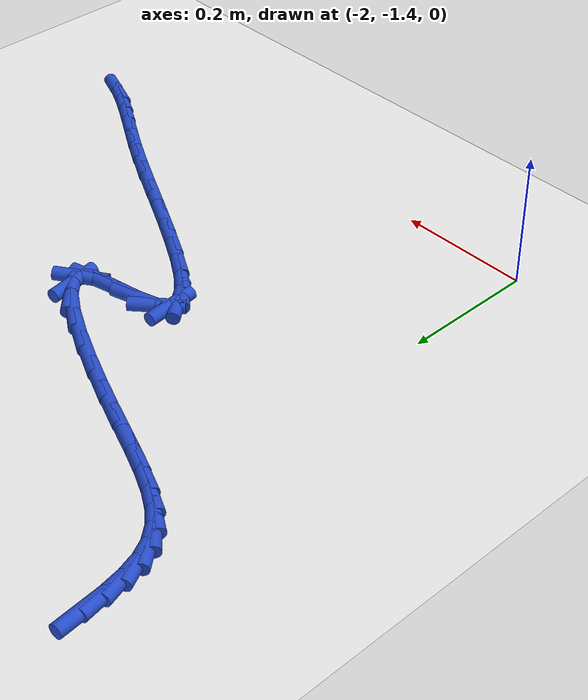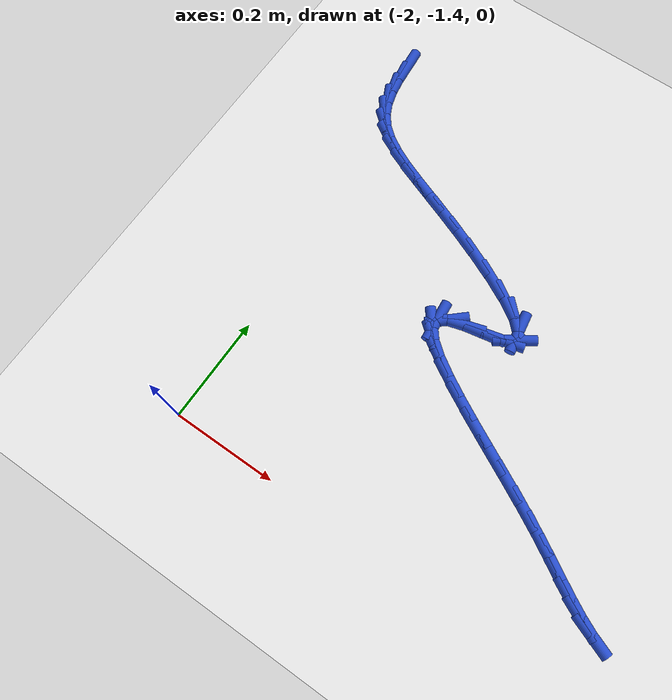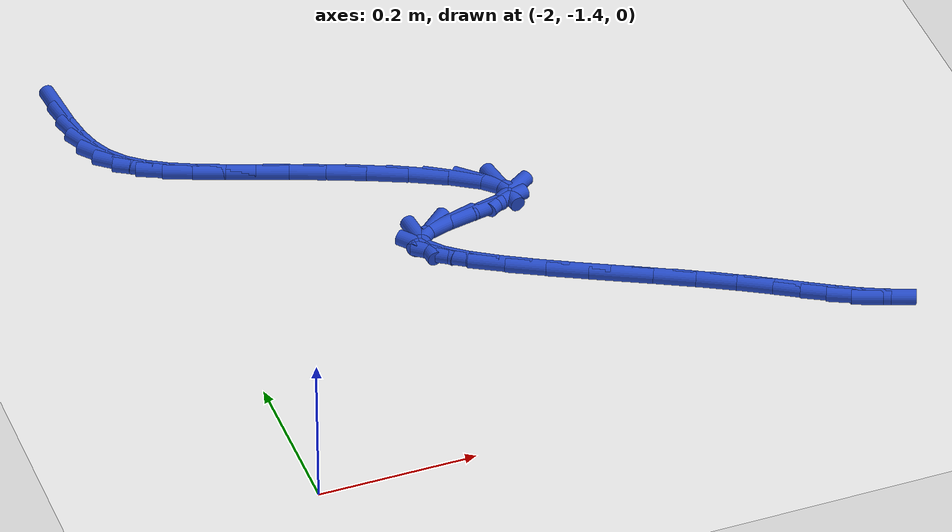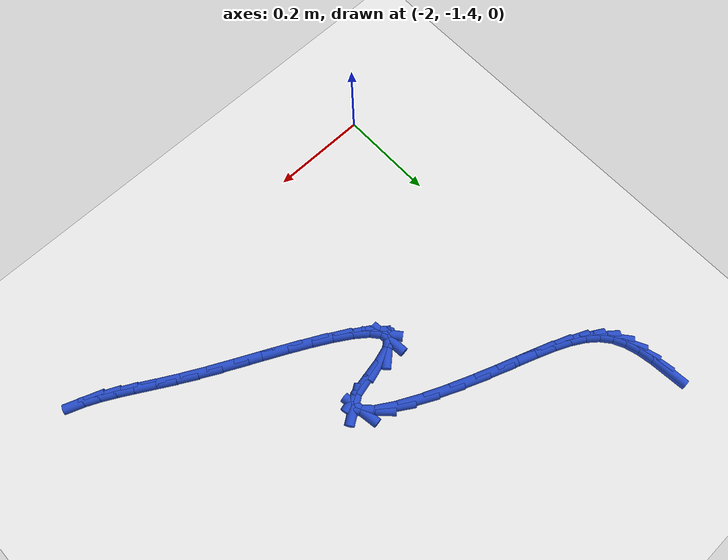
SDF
<sdf version="1.6">
 <world name="default">
  <model name="ground_plane">
   <static>1</static>
   <link name="link">
    <collision name="collision">
     <geometry><plane><normal>0 0 1</normal><size>100 100</size></plane></geometry>
     <surface><friction><ode><mu>100</mu><mu2>50</mu2></ode></friction></surface>
    </collision>
    <visual name="visual">
     <cast_shadows>0</cast_shadows>
     <geometry><plane><normal>0 0 1</normal><size>100 100</size></plane></geometry>
     <material>
      <script><uri>file://media/materials/scripts/gazebo.material</uri><name>Gazebo/WhiteGlow</name></script>
     </material>
    </visual>
   </link>
  </model>
  <model name="line">
   <link name="link_135">
    <pose>-2.067916493890919 -0.598722598378072 0.01 0 1.57 -1.483299380182615</pose>
    <collision name="collision">
     <geometry><cylinder><radius>0.01</radius><length>0.08</length></cylinder></geometry>
    </collision>
    <visual name="visual">
     <material>
      <script><name>Gazebo/Blue</name><uri>file://media/materials/scripts/gazebo.material</uri></script>
     </material>
     <geometry><cylinder><radius>0.01</radius><length>0.08</length></cylinder></geometry>
    </visual>
   </link>
   <link name="link_136">
    <pose>-2.065037530786771 -0.6315421723395312 0.01 0 1.57 -1.4065936698036143</pose>
    <collision name="collision">
     <geometry><cylinder><radius>0.01</radius><length>0.08</length></cylinder></geometry>
    </collision>
    <visual name="visual">
     <material>
      <script><name>Gazebo/Blue</name><uri>file://media/materials/scripts/gazebo.material</uri></script>
     </material>
     <geometry><cylinder><radius>0.01</radius><length>0.08</length></cylinder></geometry>
    </visual>
   </link>
   <link name="link_137">
    <pose>-2.0600673103200773 -0.6615384597249064 0.01 0 1.57 -1.283832201595204</pose>
    <collision name="collision">
     <geometry><cylinder><radius>0.01</radius><length>0.08</length></cylinder></geometry>
    </collision>
    <visual name="visual">
     <material>
      <script><name>Gazebo/Blue</name><uri>file://media/materials/scripts/gazebo.material</uri></script>
     </material>
     <geometry><cylinder><radius>0.01</radius><length>0.08</length></cylinder></geometry>
    </visual>
   </link>
   <link name="link_138">
    <pose>-2.052122997119653 -0.6884583382209716 0.01 0 1.57 -1.1069429714617924</pose>
    <collision name="collision">
     <geometry><cylinder><radius>0.01</radius><length>0.08</length></cylinder></geometry>
    </collision>
    <visual name="visual">
     <material>
      <script><name>Gazebo/Blue</name><uri>file://media/materials/scripts/gazebo.material</uri></script>
     </material>
     <geometry><cylinder><radius>0.01</radius><length>0.08</length></cylinder></geometry>
    </visual>
   </link>
   <link name="link_139">
    <pose>-2.0403217558143116 -0.7120486855145011 0.01 0 1.57 -0.8862366457816258</pose>
    <collision name="collision">
     <geometry><cylinder><radius>0.01</radius><length>0.08</length></cylinder></geometry>
    </collision>
    <visual name="visual">
     <material>
      <script><name>Gazebo/Blue</name><uri>file://media/materials/scripts/gazebo.material</uri></script>
     </material>
     <geometry><cylinder><radius>0.01</radius><length>0.08</length></cylinder></geometry>
    </visual>
   </link>
   <link name="link_140">
    <pose>-2.0238890570081325 -0.7321811038231639 0.01 0 1.57 -0.683920303082574</pose>
    <collision name="collision">
     <geometry><cylinder><radius>0.01</radius><length>0.08</length></cylinder></geometry>
    </collision>
    <visual name="visual">
     <material>
      <script><name>Gazebo/Blue</name><uri>file://media/materials/scripts/gazebo.material</uri></script>
     </material>
     <geometry><cylinder><radius>0.01</radius><length>0.08</length></cylinder></geometry>
    </visual>
   </link>
   <link name="link_141">
    <pose>-2.0026890162471576 -0.7494626551635923 0.01 0 1.57 -0.5342690049936617</pose>
    <collision name="collision">
     <geometry><cylinder><radius>0.01</radius><length>0.08</length></cylinder></geometry>
    </collision>
    <visual name="visual">
     <material>
      <script><name>Gazebo/Blue</name><uri>file://media/materials/scripts/gazebo.material</uri></script>
     </material>
     <geometry><cylinder><radius>0.01</radius><length>0.08</length></cylinder></geometry>
    </visual>
   </link>
   <link name="link_142">
    <pose>-1.9768190296153685 -0.7647690460624794 0.01 0 1.57 -0.43665350294838584</pose>
    <collision name="collision">
     <geometry><cylinder><radius>0.01</radius><length>0.08</length></cylinder></geometry>
    </collision>
    <visual name="visual">
     <material>
      <script><name>Gazebo/Blue</name><uri>file://media/materials/scripts/gazebo.material</uri></script>
     </material>
     <geometry><cylinder><radius>0.01</radius><length>0.08</length></cylinder></geometry>
    </visual>
   </link>
   <link name="link_143">
    <pose>-1.946376837153299 -0.7789763791448823 0.01 0 1.57 -0.38094366198259</pose>
    <collision name="collision">
     <geometry><cylinder><radius>0.01</radius><length>0.08</length></cylinder></geometry>
    </collision>
    <visual name="visual">
     <material>
      <script><name>Gazebo/Blue</name><uri>file://media/materials/scripts/gazebo.material</uri></script>
     </material>
     <geometry><cylinder><radius>0.01</radius><length>0.08</length></cylinder></geometry>
    </visual>
   </link>
   <link name="link_144">
    <pose>-1.911460178901483 -0.7929607570358587 0.01 0 1.57 -0.35659362304120257</pose>
    <collision name="collision">
     <geometry><cylinder><radius>0.01</radius><length>0.08</length></cylinder></geometry>
    </collision>
    <visual name="visual">
     <material>
      <script><name>Gazebo/Blue</name><uri>file://media/materials/scripts/gazebo.material</uri></script>
     </material>
     <geometry><cylinder><radius>0.01</radius><length>0.08</length></cylinder></geometry>
    </visual>
   </link>
   <link name="link_145">
    <pose>-1.8721667949004552 -0.8075982823604648 0.01 0 1.57 -0.3552879892847567</pose>
    <collision name="collision">
     <geometry><cylinder><radius>0.01</radius><length>0.08</length></cylinder></geometry>
    </collision>
    <visual name="visual">
     <material>
      <script><name>Gazebo/Blue</name><uri>file://media/materials/scripts/gazebo.material</uri></script>
     </material>
     <geometry><cylinder><radius>0.01</radius><length>0.08</length></cylinder></geometry>
    </visual>
   </link>
   <link name="link_146">
    <pose>-1.8285944251907496 -0.823765057743758 0.01 0 1.57 -0.37014328366667143</pose>
    <collision name="collision">
     <geometry><cylinder><radius>0.01</radius><length>0.08</length></cylinder></geometry>
    </collision>
    <visual name="visual">
     <material>
      <script><name>Gazebo/Blue</name><uri>file://media/materials/scripts/gazebo.material</uri></script>
     </material>
     <geometry><cylinder><radius>0.01</radius><length>0.08</length></cylinder></geometry>
    </visual>
   </link>
   <link name="link_147">
    <pose>-1.7811414905759337 -0.8421781255200526 0.01 0 1.57 -0.3932155862837983</pose>
    <collision name="collision">
     <geometry><cylinder><radius>0.01</radius><length>0.08</length></cylinder></geometry>
    </collision>
    <visual name="visual">
     <material>
      <script><name>Gazebo/Blue</name><uri>file://media/materials/scripts/gazebo.material</uri></script>
     </material>
     <geometry><cylinder><radius>0.01</radius><length>0.08</length></cylinder></geometry>
    </visual>
   </link>
   <link name="link_148">
    <pose>-1.7323746527942985 -0.862407527364242 0.01 0 1.57 -0.42569543152766987</pose>
    <collision name="collision">
     <geometry><cylinder><radius>0.01</radius><length>0.08</length></cylinder></geometry>
    </collision>
    <visual name="visual">
     <material>
      <script><name>Gazebo/Blue</name><uri>file://media/materials/scripts/gazebo.material</uri></script>
     </material>
     <geometry><cylinder><radius>0.01</radius><length>0.08</length></cylinder></geometry>
    </visual>
   </link>
   <link name="link_149">
    <pose>-1.685811658556468 -0.883520180472307 0.01 0 1.57 -0.47614512502738</pose>
    <collision name="collision">
     <geometry><cylinder><radius>0.01</radius><length>0.08</length></cylinder></geometry>
    </collision>
    <visual name="visual">
     <material>
      <script><name>Gazebo/Blue</name><uri>file://media/materials/scripts/gazebo.material</uri></script>
     </material>
     <geometry><cylinder><radius>0.01</radius><length>0.08</length></cylinder></geometry>
    </visual>
   </link>
   <link name="link_150">
    <pose>-1.6449743141230697 -0.9045808545360223 0.01 0 1.57 -0.56607121605011</pose>
    <collision name="collision">
     <geometry><cylinder><radius>0.01</radius><length>0.08</length></cylinder></geometry>
    </collision>
    <visual name="visual">
     <material>
      <script><name>Gazebo/Blue</name><uri>file://media/materials/scripts/gazebo.material</uri></script>
     </material>
     <geometry><cylinder><radius>0.01</radius><length>0.08</length></cylinder></geometry>
    </visual>
   </link>
   <link name="link_151">
    <pose>-1.6133844257547305 -0.9246543192471623 0.01 0 1.57 -0.7672889425826049</pose>
    <collision name="collision">
     <geometry><cylinder><radius>0.01</radius><length>0.08</length></cylinder></geometry>
    </collision>
    <visual name="visual">
     <material>
      <script><name>Gazebo/Blue</name><uri>file://media/materials/scripts/gazebo.material</uri></script>
     </material>
     <geometry><cylinder><radius>0.01</radius><length>0.08</length></cylinder></geometry>
    </visual>
   </link>
   <link name="link_152">
    <pose>-1.5945637997120776 -0.9428053442975004 0.01 0 1.57 -1.4068780096377695</pose>
    <collision name="collision">
     <geometry><cylinder><radius>0.01</radius><length>0.08</length></cylinder></geometry>
    </collision>
    <visual name="visual">
     <material>
      <script><name>Gazebo/Blue</name><uri>file://media/materials/scripts/gazebo.material</uri></script>
     </material>
     <geometry><cylinder><radius>0.01</radius><length>0.08</length></cylinder></geometry>
    </visual>
   </link>
   <link name="link_153">
    <pose>-1.5920342422557385 -0.9580986993788119 0.01 0 1.57 0.5915170766271064</pose>
    <collision name="collision">
     <geometry><cylinder><radius>0.01</radius><length>0.08</length></cylinder></geometry>
    </collision>
    <visual name="visual">
     <material>
      <script><name>Gazebo/Blue</name><uri>file://media/materials/scripts/gazebo.material</uri></script>
     </material>
     <geometry><cylinder><radius>0.01</radius><length>0.08</length></cylinder></geometry>
    </visual>
   </link>
   <link name="link_154">
    <pose>-1.6091938074019154 -0.96962572427798 0.01 0 1.57 0.2375346020109043</pose>
    <collision name="collision">
     <geometry><cylinder><radius>0.01</radius><length>0.08</length></cylinder></geometry>
    </collision>
    <visual name="visual">
     <material>
      <script><name>Gazebo/Blue</name><uri>file://media/materials/scripts/gazebo.material</uri></script>
     </material>
     <geometry><cylinder><radius>0.01</radius><length>0.08</length></cylinder></geometry>
    </visual>
   </link>
   <link name="link_155">
    <pose>-1.6431098702396056 -0.9778369805235966 0.01 0 1.57 0.18803650561095975</pose>
    <collision name="collision">
     <geometry><cylinder><radius>0.01</radius><length>0.08</length></cylinder></geometry>
    </collision>
    <visual name="visual">
     <material>
      <script><name>Gazebo/Blue</name><uri>file://media/materials/scripts/gazebo.material</uri></script>
     </material>
     <geometry><cylinder><radius>0.01</radius><length>0.08</length></cylinder></geometry>
    </visual>
   </link>
   <link name="link_156">
    <pose>-1.6816196163421733 -0.9851647877485555 0.01 0 1.57 0.2900009763186191</pose>
    <collision name="collision">
     <geometry><cylinder><radius>0.01</radius><length>0.08</length></cylinder></geometry>
    </collision>
    <visual name="visual">
     <material>
      <script><name>Gazebo/Blue</name><uri>file://media/materials/scripts/gazebo.material</uri></script>
     </material>
     <geometry><cylinder><radius>0.01</radius><length>0.08</length></cylinder></geometry>
    </visual>
   </link>
   <link name="link_157">
    <pose>-1.7118664378950057 -0.9941908582132488 0.01 0 1.57 0.7300405551082223</pose>
    <collision name="collision">
     <geometry><cylinder><radius>0.01</radius><length>0.08</length></cylinder></geometry>
    </collision>
    <visual name="visual">
     <material>
      <script><name>Gazebo/Blue</name><uri>file://media/materials/scripts/gazebo.material</uri></script>
     </material>
     <geometry><cylinder><radius>0.01</radius><length>0.08</length></cylinder></geometry>
    </visual>
   </link>
   <link name="link_158">
    <pose>-1.7256740176029741 -1.0065485118004778 0.01 0 1.57 -1.4722492353242589</pose>
    <collision name="collision">
     <geometry><cylinder><radius>0.01</radius><length>0.08</length></cylinder></geometry>
    </collision>
    <visual name="visual">
     <material>
      <script><name>Gazebo/Blue</name><uri>file://media/materials/scripts/gazebo.material</uri></script>
     </material>
     <geometry><cylinder><radius>0.01</radius><length>0.08</length></cylinder></geometry>
    </visual>
   </link>
   <link name="link_159">
    <pose>-1.7241473238151717 -1.0219903516891242 0.01 0 1.57 -0.8887772824226022</pose>
    <collision name="collision">
     <geometry><cylinder><radius>0.01</radius><length>0.08</length></cylinder></geometry>
    </collision>
    <visual name="visual">
     <material>
      <script><name>Gazebo/Blue</name><uri>file://media/materials/scripts/gazebo.material</uri></script>
     </material>
     <geometry><cylinder><radius>0.01</radius><length>0.08</length></cylinder></geometry>
    </visual>
   </link>
   <link name="link_160">
    <pose>-1.7094849017650409 -1.040047383706983 0.01 0 1.57 -0.6681213167551258</pose>
    <collision name="collision">
     <geometry><cylinder><radius>0.01</radius><length>0.08</length></cylinder></geometry>
    </collision>
    <visual name="visual">
     <material>
      <script><name>Gazebo/Blue</name><uri>file://media/materials/scripts/gazebo.material</uri></script>
     </material>
     <geometry><cylinder><radius>0.01</radius><length>0.08</length></cylinder></geometry>
    </visual>
   </link>
   <link name="link_161">
    <pose>-1.6838852966860256 -1.0602506136818506 0.01 0 1.57 -0.5673264692243034</pose>
    <collision name="collision">
     <geometry><cylinder><radius>0.01</radius><length>0.08</length></cylinder></geometry>
    </collision>
    <visual name="visual">
     <material>
      <script><name>Gazebo/Blue</name><uri>file://media/materials/scripts/gazebo.material</uri></script>
     </material>
     <geometry><cylinder><radius>0.01</radius><length>0.08</length></cylinder></geometry>
    </visual>
   </link>
   <link name="link_162">
    <pose>-1.6495470538115669 -1.0821310474415236 0.01 0 1.57 -0.5141453011658991</pose>
    <collision name="collision">
     <geometry><cylinder><radius>0.01</radius><length>0.08</length></cylinder></geometry>
    </collision>
    <visual name="visual">
     <material>
      <script><name>Gazebo/Blue</name><uri>file://media/materials/scripts/gazebo.material</uri></script>
     </material>
     <geometry><cylinder><radius>0.01</radius><length>0.08</length></cylinder></geometry>
    </visual>
   </link>
   <link name="link_163">
    <pose>-1.6086687183751096 -1.1052196908137961 0.01 0 1.57 -0.48496131021579575</pose>
    <collision name="collision">
     <geometry><cylinder><radius>0.01</radius><length>0.08</length></cylinder></geometry>
    </collision>
    <visual name="visual">
     <material>
      <script><name>Gazebo/Blue</name><uri>file://media/materials/scripts/gazebo.material</uri></script>
     </material>
     <geometry><cylinder><radius>0.01</radius><length>0.08</length></cylinder></geometry>
    </visual>
   </link>
   <link name="link_164">
    <pose>-1.5634488356100966 -1.1290475496264654 0.01 0 1.57 -0.470660188073307</pose>
    <collision name="collision">
     <geometry><cylinder><radius>0.01</radius><length>0.08</length></cylinder></geometry>
    </collision>
    <visual name="visual">
     <material>
      <script><name>Gazebo/Blue</name><uri>file://media/materials/scripts/gazebo.material</uri></script>
     </material>
     <geometry><cylinder><radius>0.01</radius><length>0.08</length></cylinder></geometry>
    </visual>
   </link>
   <link name="link_165">
    <pose>-1.5160859507499698 -1.153145629707327 0.01 0 1.57 -0.46779285645614493</pose>
    <collision name="collision">
     <geometry><cylinder><radius>0.01</radius><length>0.08</length></cylinder></geometry>
    </collision>
    <visual name="visual">
     <material>
      <script><name>Gazebo/Blue</name><uri>file://media/materials/scripts/gazebo.material</uri></script>
     </material>
     <geometry><cylinder><radius>0.01</radius><length>0.08</length></cylinder></geometry>
    </visual>
   </link>
   <link name="link_166">
    <pose>-1.4687786090281718 -1.1770449368841776 0.01 0 1.57 -0.47608609883440317</pose>
    <collision name="collision">
     <geometry><cylinder><radius>0.01</radius><length>0.08</length></cylinder></geometry>
    </collision>
    <visual name="visual">
     <material>
      <script><name>Gazebo/Blue</name><uri>file://media/materials/scripts/gazebo.material</uri></script>
     </material>
     <geometry><cylinder><radius>0.01</radius><length>0.08</length></cylinder></geometry>
    </visual>
   </link>
   <link name="link_167">
    <pose>-1.423725355678148 -1.2002764769848115 0.01 0 1.57 -0.4975861576322858</pose>
    <collision name="collision">
     <geometry><cylinder><radius>0.01</radius><length>0.08</length></cylinder></geometry>
    </collision>
    <visual name="visual">
     <material>
      <script><name>Gazebo/Blue</name><uri>file://media/materials/scripts/gazebo.material</uri></script>
     </material>
     <geometry><cylinder><radius>0.01</radius><length>0.08</length></cylinder></geometry>
    </visual>
   </link>
   <link name="link_168">
    <pose>-1.3830329773676353 -1.222379452408749 0.01 0 1.57 -0.5222098842437612</pose>
    <collision name="collision">
     <geometry><cylinder><radius>0.01</radius><length>0.08</length></cylinder></geometry>
    </collision>
    <visual name="visual">
     <material>
      <script><name>Gazebo/Blue</name><uri>file://media/materials/scripts/gazebo.material</uri></script>
     </material>
     <geometry><cylinder><radius>0.01</radius><length>0.08</length></cylinder></geometry>
    </visual>
   </link>
   <link name="link_169">
    <pose>-1.347127185409768 -1.2430432319689653 0.01 0 1.57 -0.5345923926257861</pose>
    <collision name="collision">
     <geometry><cylinder><radius>0.01</radius><length>0.08</length></cylinder></geometry>
    </collision>
    <visual name="visual">
     <material>
      <script><name>Gazebo/Blue</name><uri>file://media/materials/scripts/gazebo.material</uri></script>
     </material>
     <geometry><cylinder><radius>0.01</radius><length>0.08</length></cylinder></geometry>
    </visual>
   </link>
   <link name="link_170">
    <pose>-1.3149613566906238 -1.2620887045674771 0.01 0 1.57 -0.5288620409970765</pose>
    <collision name="collision">
     <geometry><cylinder><radius>0.01</radius><length>0.08</length></cylinder></geometry>
    </collision>
    <visual name="visual">
     <material>
      <script><name>Gazebo/Blue</name><uri>file://media/materials/scripts/gazebo.material</uri></script>
     </material>
     <geometry><cylinder><radius>0.01</radius><length>0.08</length></cylinder></geometry>
    </visual>
   </link>
   <link name="link_171">
    <pose>-1.2854390879055195 -1.279341205850872 0.01 0 1.57 -0.5000548430993808</pose>
    <collision name="collision">
     <geometry><cylinder><radius>0.01</radius><length>0.08</length></cylinder></geometry>
    </collision>
    <visual name="visual">
     <material>
      <script><name>Gazebo/Blue</name><uri>file://media/materials/scripts/gazebo.material</uri></script>
     </material>
     <geometry><cylinder><radius>0.01</radius><length>0.08</length></cylinder></geometry>
    </visual>
   </link>
   <link name="link_172">
    <pose>-1.2574639757497705 -1.2946260714657376 0.01 0 1.57 -0.445476793109331</pose>
    <collision name="collision">
     <geometry><cylinder><radius>0.01</radius><length>0.08</length></cylinder></geometry>
    </collision>
    <visual name="visual">
     <material>
      <script><name>Gazebo/Blue</name><uri>file://media/materials/scripts/gazebo.material</uri></script>
     </material>
     <geometry><cylinder><radius>0.01</radius><length>0.08</length></cylinder></geometry>
    </visual>
   </link>
   <link name="link_173">
    <pose>-1.2299396169186916 -1.3077686370586623 0.01 0 1.57 -0.3668949435195673</pose>
    <collision name="collision">
     <geometry><cylinder><radius>0.01</radius><length>0.08</length></cylinder></geometry>
    </collision>
    <visual name="visual">
     <material>
      <script><name>Gazebo/Blue</name><uri>file://media/materials/scripts/gazebo.material</uri></script>
     </material>
     <geometry><cylinder><radius>0.01</radius><length>0.08</length></cylinder></geometry>
    </visual>
   </link>
  </model>
 </world>
</sdf>
